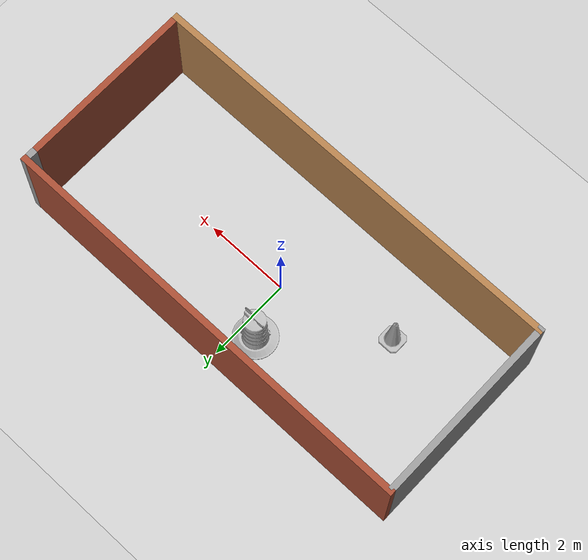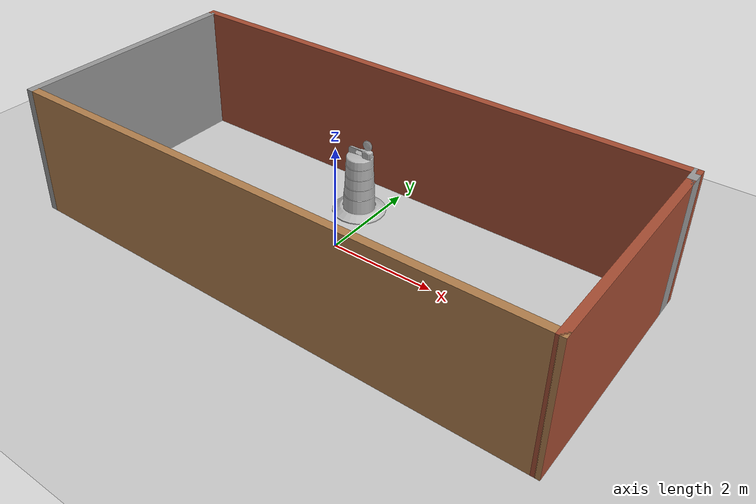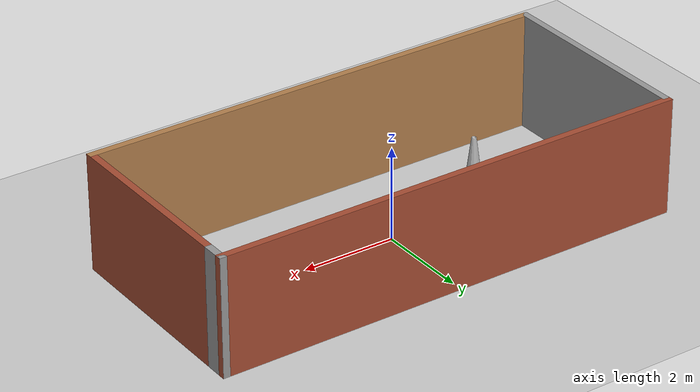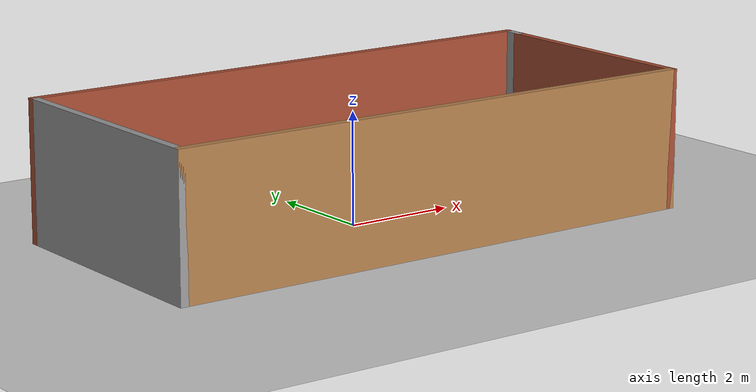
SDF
<sdf version="1.6">
 <world name="default">
  <model name="ground_plane">
   <static>1</static>
   <link name="link">
    <collision name="collision">
     <geometry><plane><normal>0 0 1</normal><size>100 100</size></plane></geometry>
     <surface>
      <contact><collide_bitmask>65535</collide_bitmask></contact>
      <friction><ode><mu>100</mu><mu2>50</mu2></ode></friction>
     </surface>
    </collision>
    <visual name="visual">
     <cast_shadows>0</cast_shadows>
     <geometry><plane><normal>0 0 1</normal><size>100 100</size></plane></geometry>
     <material>
      <script><uri>file://media/materials/scripts/gazebo.material</uri><name>Gazebo/Grey</name></script>
     </material>
    </visual>
   </link>
  </model>
  <model name="room">
   <pose>0.128945 -0.058885 -0.00842 0 -0 0</pose>
   <link name="Wall_0">
    <collision name="Wall_0_Collision">
     <geometry><box><size>4.5 0.15 2.5</size></box></geometry>
     <pose>0 0 1.25 0 -0 0</pose>
    </collision>
    <visual name="Wall_0_Visual">
     <pose>0 0 1.25 0 -0 0</pose>
     <geometry><box><size>4.5 0.15 2.5</size></box></geometry>
     <material>
      <script><uri>file://media/materials/scripts/gazebo.material</uri><name>Gazebo/Grey</name></script>
      <ambient>1 1 1 1</ambient>
     </material>
     <meta><layer>0</layer></meta>
    </visual>
    <pose>-5.05 -0.05 0 0 0 -1.5708</pose>
   </link>
   <link name="Wall_1">
    <collision name="Wall_1_Collision">
     <geometry><box><size>10.25 0.15 2.5</size></box></geometry>
     <pose>0 0 1.25 0 -0 0</pose>
    </collision>
    <visual name="Wall_1_Visual">
     <pose>0 0 1.25 0 -0 0</pose>
     <geometry><box><size>10.25 0.15 2.5</size></box></geometry>
     <material>
      <script><uri>file://media/materials/scripts/gazebo.material</uri><name>Gazebo/Wood</name></script>
      <ambient>1 1 1 1</ambient>
     </material>
     <meta><layer>0</layer></meta>
    </visual>
    <pose>0 -2.225 0 0 -0 0</pose>
   </link>
   <link name="Wall_2">
    <collision name="Wall_2_Collision">
     <geometry><box><size>4.25 0.15 2.5</size></box></geometry>
     <pose>0 0 1.25 0 -0 0</pose>
    </collision>
    <visual name="Wall_2_Visual">
     <pose>0 0 1.25 0 -0 0</pose>
     <geometry><box><size>4.25 0.15 2.5</size></box></geometry>
     <material>
      <script><uri>file://media/materials/scripts/gazebo.material</uri><name>Gazebo/Bricks</name></script>
      <ambient>1 1 1 1</ambient>
     </material>
     <meta><layer>0</layer></meta>
    </visual>
    <pose>5.05 -0.175 0 0 -0 1.5708</pose>
   </link>
   <link name="Wall_3">
    <collision name="Wall_3_Collision">
     <geometry><box><size>0.5 0.15 2.5</size></box></geometry>
     <pose>0 0 1.25 0 -0 0</pose>
    </collision>
    <visual name="Wall_3_Visual">
     <pose>0 0 1.25 0 -0 0</pose>
     <geometry><box><size>0.5 0.15 2.5</size></box></geometry>
     <material>
      <script><uri>file://media/materials/scripts/gazebo.material</uri><name>Gazebo/Grey</name></script>
      <ambient>1 1 1 1</ambient>
     </material>
     <meta><layer>0</layer></meta>
    </visual>
    <pose>5.05 2.05 0 0 -0 1.5708</pose>
   </link>
   <link name="Wall_4">
    <collision name="Wall_4_Collision">
     <geometry><box><size>10.2505 0.15 2.5</size></box></geometry>
     <pose>0 0 1.25 0 -0 0</pose>
    </collision>
    <visual name="Wall_4_Visual">
     <pose>0 0 1.25 0 -0 0</pose>
     <geometry><box><size>10.2505 0.15 2.5</size></box></geometry>
     <material>
      <script><uri>file://media/materials/scripts/gazebo.material</uri><name>Gazebo/Bricks</name></script>
      <ambient>1 1 1 1</ambient>
     </material>
     <meta><layer>0</layer></meta>
    </visual>
    <pose>0 2.225 0 0 -0 3.14159</pose>
   </link>
   <static>1</static>
  </model>
  <model name="Construction Barrel">
   <link name="link">
    <inertial>
     <pose>0 0 0.4 0 -0 0</pose>
     <mass>500</mass>
     <inertia><ixx>51.2096</ixx><iyy>51.2096</iyy><izz>25</izz><ixy>0</ixy><ixz>0</ixz><iyz>0</iyz></inertia>
    </inertial>
    <collision name="collision">
     <geometry><mesh><uri>model://construction_barrel/meshes/construction_barrel.dae</uri></mesh></geometry>
    </collision>
    <visual name="visual">
     <geometry><mesh><uri>model://construction_barrel/meshes/construction_barrel.dae</uri></mesh></geometry>
    </visual>
   </link>
   <pose>-0.357429 1.17347 1e-06 2e-06 3e-06 -6e-06</pose>
  </model>
  <model name="Construction Cone">
   <link name="link">
    <collision name="collision">
     <geometry>
      <mesh><scale>10 10 10</scale><uri>model://construction_cone/meshes/construction_cone.dae</uri></mesh>
     </geometry>
    </collision>
    <visual name="visual">
     <geometry>
      <mesh><scale>10 10 10</scale><uri>model://construction_cone/meshes/construction_cone.dae</uri></mesh>
     </geometry>
    </visual>
    <inertial>
     <inertia><ixx>1</ixx><ixy>0</ixy><ixz>0</ixz><iyy>1</iyy><iyz>0</iyz><izz>1</izz></inertia>
     <mass>1</mass>
    </inertial>
   </link>
   <pose>-2.52899 -0.77848 0 0 -0 0</pose>
  </model>
 </world>
</sdf>
